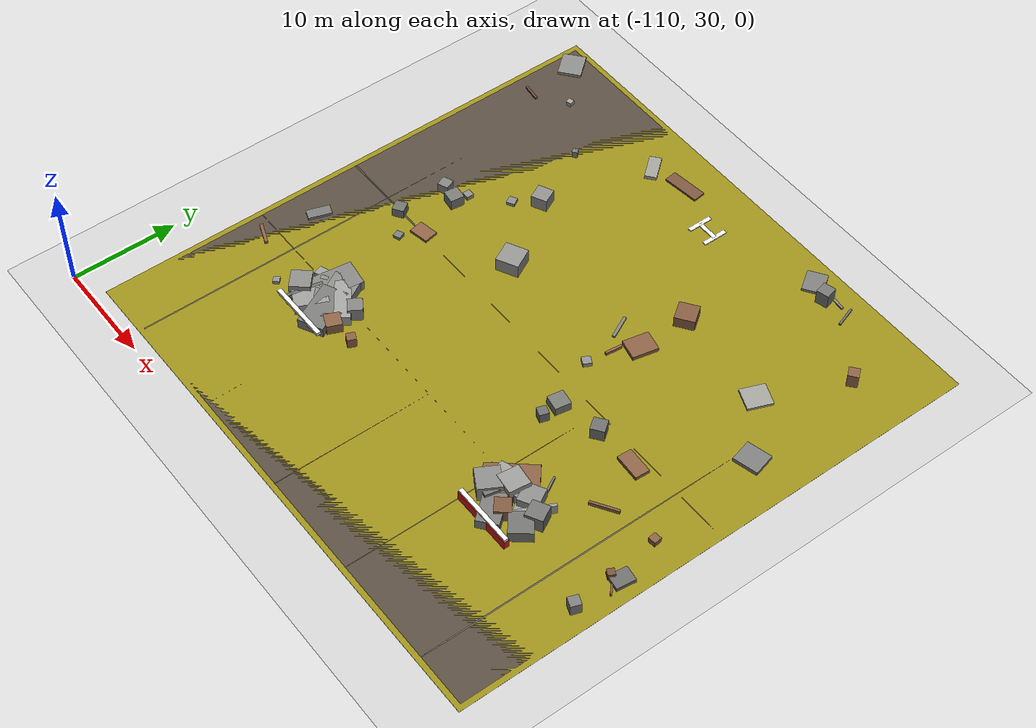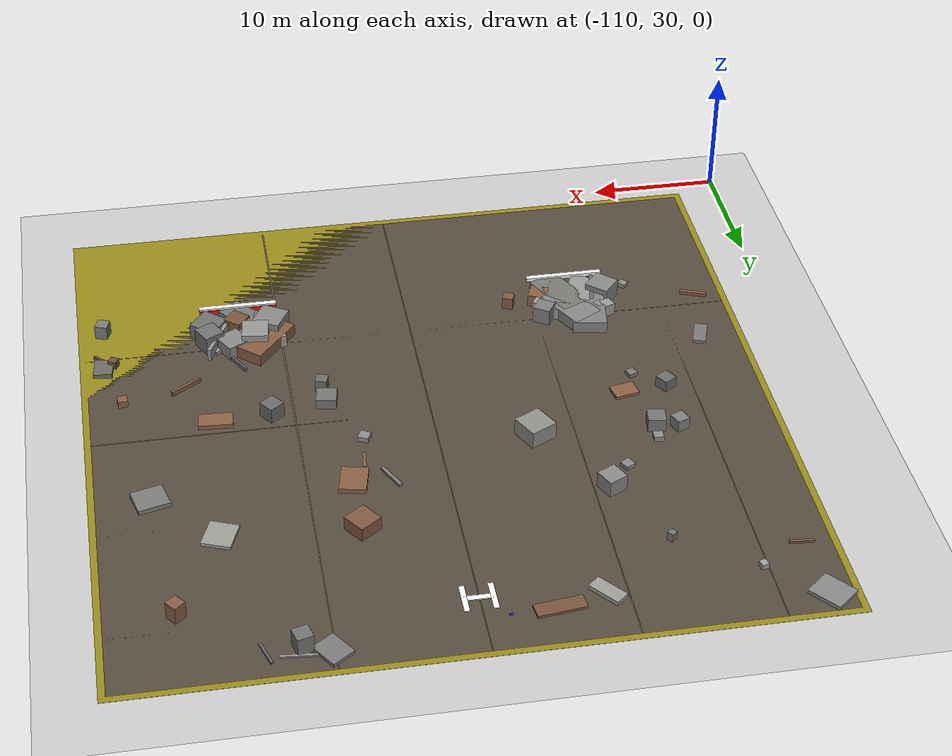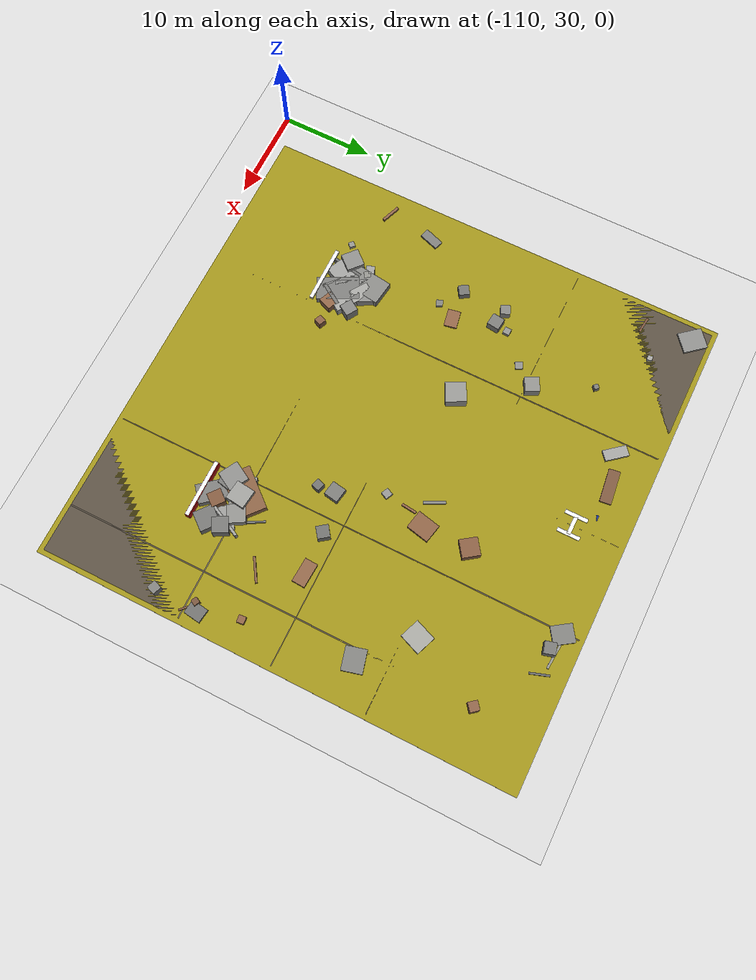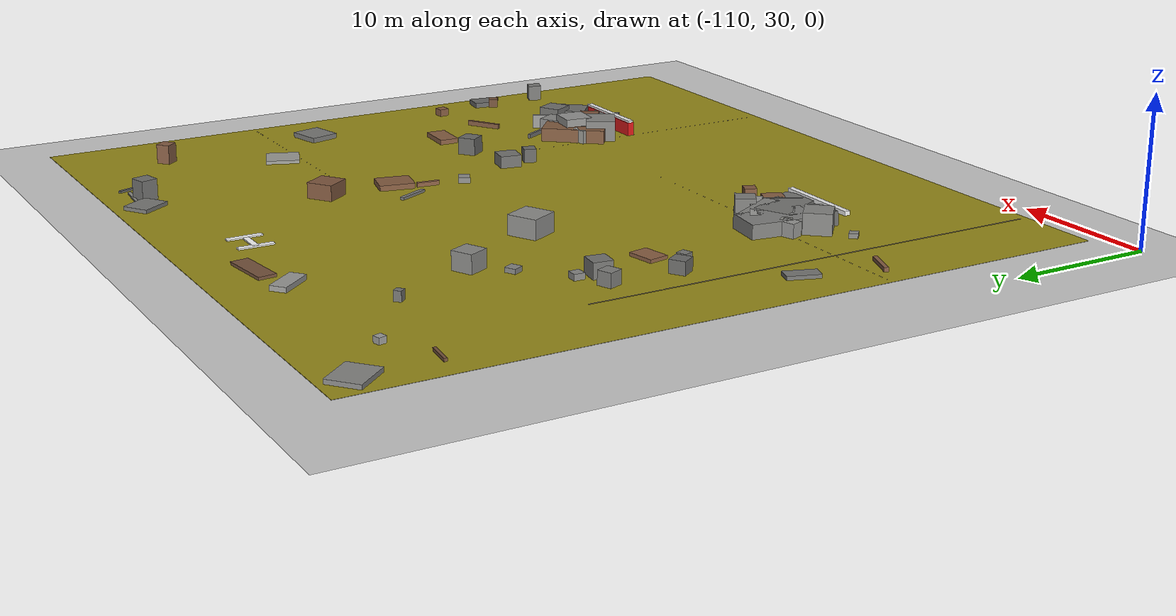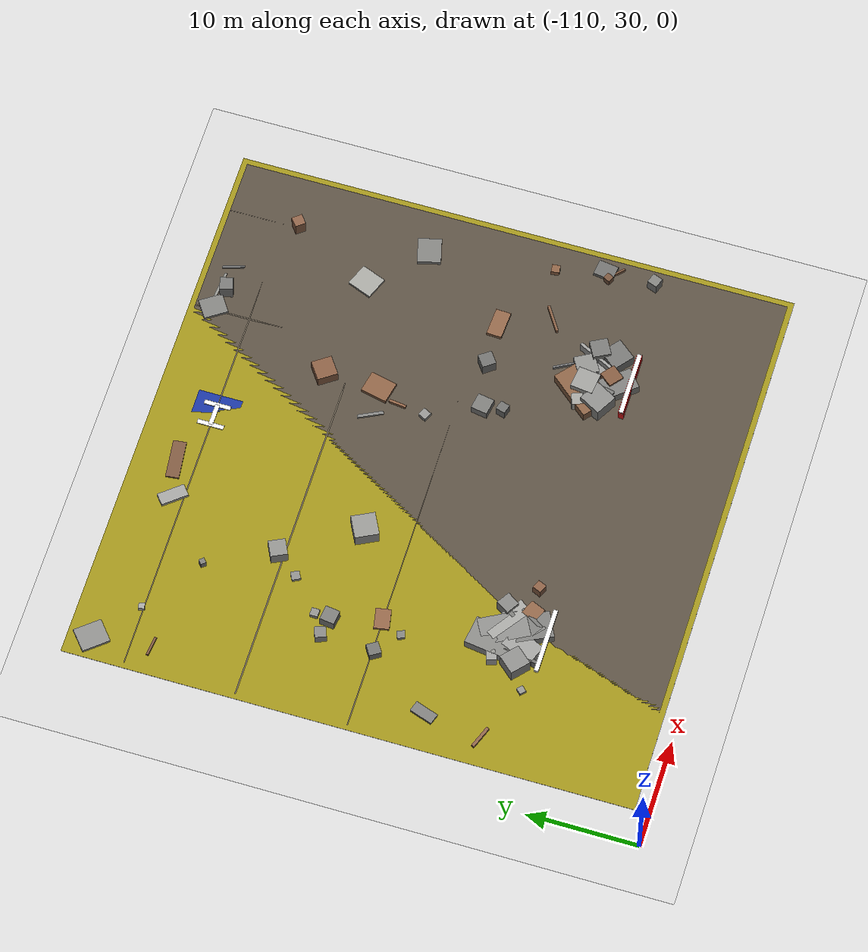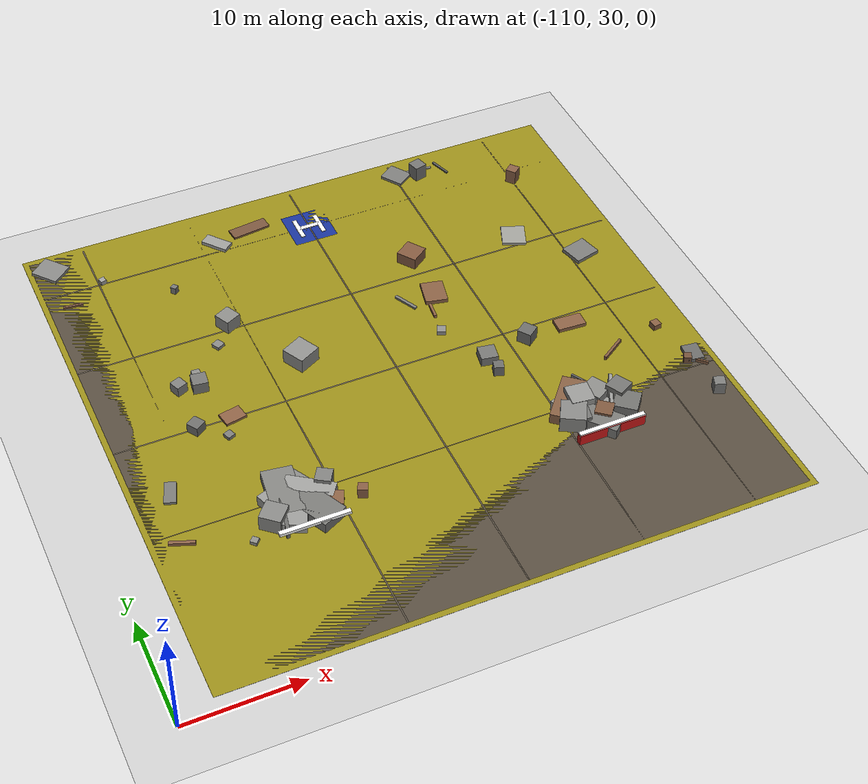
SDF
<sdf version="1.6">
 <world name="navitas_arena">
  <model name="ground_plane">
   <static>true</static>
   <link name="link">
    <collision name="collision">
     <geometry><plane><normal>0 0 1</normal><size>400 400</size></plane></geometry>
     <surface><friction><ode><mu>0.8</mu><mu2>0.8</mu2></ode></friction></surface>
    </collision>
    <visual name="visual">
     <cast_shadows>false</cast_shadows>
     <geometry><plane><normal>0 0 1</normal><size>400 400</size></plane></geometry>
     <material>
      <script><uri>file://media/materials/scripts/gazebo.material</uri><name>Gazebo/Grey</name></script>
     </material>
    </visual>
   </link>
  </model>
  <model name="gr_kolay">
   <static>true</static>
   <pose>-81.400 56.800 0.010 0 0 0.000</pose>
   <link name="link">
    <collision name="col"><geometry><box><size>51.000 51.000 0.020</size></box></geometry></collision>
    <visual name="vis">
     <geometry><box><size>51.000 51.000 0.020</size></box></geometry>
     <material><ambient>0.60 0.55 0.10 1</ambient><diffuse>0.60 0.55 0.10 1</diffuse></material>
    </visual>
   </link>
  </model>
  <model name="gd_kolay">
   <static>true</static>
   <pose>-81.400 56.800 0.010 0 0 0.000</pose>
   <link name="link">
    <collision name="col"><geometry><box><size>50.000 50.000 0.020</size></box></geometry></collision>
    <visual name="vis">
     <geometry><box><size>50.000 50.000 0.020</size></box></geometry>
     <material><ambient>0.34 0.30 0.25 1</ambient><diffuse>0.34 0.30 0.25 1</diffuse></material>
    </visual>
   </link>
  </model>
  <model name="gv_kolay_-2">
   <static>true</static>
   <pose>-101.400 56.800 0.010 0 0 0.000</pose>
   <link name="link">
    <collision name="col"><geometry><box><size>0.120 50.000 0.020</size></box></geometry></collision>
    <visual name="vis">
     <geometry><box><size>0.120 50.000 0.020</size></box></geometry>
     <material><ambient>0.42 0.38 0.32 1</ambient><diffuse>0.42 0.38 0.32 1</diffuse></material>
    </visual>
   </link>
  </model>
  <model name="gv_kolay_-1">
   <static>true</static>
   <pose>-91.400 56.800 0.010 0 0 0.000</pose>
   <link name="link">
    <collision name="col"><geometry><box><size>0.120 50.000 0.020</size></box></geometry></collision>
    <visual name="vis">
     <geometry><box><size>0.120 50.000 0.020</size></box></geometry>
     <material><ambient>0.42 0.38 0.32 1</ambient><diffuse>0.42 0.38 0.32 1</diffuse></material>
    </visual>
   </link>
  </model>
  <model name="gh_kolay_-1">
   <static>true</static>
   <pose>-81.400 46.800 0.010 0 0 0.000</pose>
   <link name="link">
    <collision name="col"><geometry><box><size>50.000 0.120 0.020</size></box></geometry></collision>
    <visual name="vis">
     <geometry><box><size>50.000 0.120 0.020</size></box></geometry>
     <material><ambient>0.42 0.38 0.32 1</ambient><diffuse>0.42 0.38 0.32 1</diffuse></material>
    </visual>
   </link>
  </model>
  <model name="gv_kolay_0">
   <static>true</static>
   <pose>-81.400 56.800 0.010 0 0 0.000</pose>
   <link name="link">
    <collision name="col"><geometry><box><size>0.120 50.000 0.020</size></box></geometry></collision>
    <visual name="vis">
     <geometry><box><size>0.120 50.000 0.020</size></box></geometry>
     <material><ambient>0.42 0.38 0.32 1</ambient><diffuse>0.42 0.38 0.32 1</diffuse></material>
    </visual>
   </link>
  </model>
  <model name="gh_kolay_0">
   <static>true</static>
   <pose>-81.400 56.800 0.010 0 0 0.000</pose>
   <link name="link">
    <collision name="col"><geometry><box><size>50.000 0.120 0.020</size></box></geometry></collision>
    <visual name="vis">
     <geometry><box><size>50.000 0.120 0.020</size></box></geometry>
     <material><ambient>0.42 0.38 0.32 1</ambient><diffuse>0.42 0.38 0.32 1</diffuse></material>
    </visual>
   </link>
  </model>
  <model name="gv_kolay_1">
   <static>true</static>
   <pose>-71.400 56.800 0.010 0 0 0.000</pose>
   <link name="link">
    <collision name="col"><geometry><box><size>0.120 50.000 0.020</size></box></geometry></collision>
    <visual name="vis">
     <geometry><box><size>0.120 50.000 0.020</size></box></geometry>
     <material><ambient>0.42 0.38 0.32 1</ambient><diffuse>0.42 0.38 0.32 1</diffuse></material>
    </visual>
   </link>
  </model>
  <model name="gh_kolay_1">
   <static>true</static>
   <pose>-81.400 66.800 0.010 0 0 0.000</pose>
   <link name="link">
    <collision name="col"><geometry><box><size>50.000 0.120 0.020</size></box></geometry></collision>
    <visual name="vis">
     <geometry><box><size>50.000 0.120 0.020</size></box></geometry>
     <material><ambient>0.42 0.38 0.32 1</ambient><diffuse>0.42 0.38 0.32 1</diffuse></material>
    </visual>
   </link>
  </model>
  <model name="gv_kolay_2">
   <static>true</static>
   <pose>-61.400 56.800 0.010 0 0 0.000</pose>
   <link name="link">
    <collision name="col"><geometry><box><size>0.120 50.000 0.020</size></box></geometry></collision>
    <visual name="vis">
     <geometry><box><size>0.120 50.000 0.020</size></box></geometry>
     <material><ambient>0.42 0.38 0.32 1</ambient><diffuse>0.42 0.38 0.32 1</diffuse></material>
    </visual>
   </link>
  </model>
  <model name="gh_kolay_2">
   <static>true</static>
   <pose>-81.400 76.800 0.010 0 0 0.000</pose>
   <link name="link">
    <collision name="col"><geometry><box><size>50.000 0.120 0.020</size></box></geometry></collision>
    <visual name="vis">
     <geometry><box><size>50.000 0.120 0.020</size></box></geometry>
     <material><ambient>0.42 0.38 0.32 1</ambient><diffuse>0.42 0.38 0.32 1</diffuse></material>
    </visual>
   </link>
  </model>
  <model name="bar_kolay_0b">
   <static>true</static>
   <pose>-94.400 42.800 1.000 0 0 0.000</pose>
   <link name="link">
    <collision name="col"><geometry><box><size>6.000 0.400 0.300</size></box></geometry></collision>
    <visual name="vis">
     <geometry><box><size>6.000 0.400 0.300</size></box></geometry>
     <material><ambient>0.95 0.95 0.95 1</ambient><diffuse>0.95 0.95 0.95 1</diffuse></material>
    </visual>
   </link>
  </model>
  <model name="blk_kolay_0_0_0">
   <static>true</static>
   <pose>-97.054 44.795 0.739 0 0 0.849</pose>
   <link name="link">
    <collision name="col"><geometry><box><size>1.883 1.883 1.478</size></box></geometry></collision>
    <visual name="vis">
     <geometry><box><size>1.883 1.883 1.478</size></box></geometry>
     <material><ambient>0.53 0.53 0.52 1</ambient><diffuse>0.53 0.53 0.52 1</diffuse></material>
    </visual>
   </link>
  </model>
  <model name="blk_kolay_0_0_1">
   <static>true</static>
   <pose>-96.267 44.581 0.500 0 0 1.383</pose>
   <link name="link">
    <collision name="col"><geometry><box><size>3.385 0.306 1.000</size></box></geometry></collision>
    <visual name="vis">
     <geometry><box><size>3.385 0.306 1.000</size></box></geometry>
     <material><ambient>0.42 0.42 0.41 1</ambient><diffuse>0.42 0.42 0.41 1</diffuse></material>
    </visual>
   </link>
  </model>
  <model name="blk_kolay_0_0_2">
   <static>true</static>
   <pose>-95.387 44.592 0.500 0 0 1.142</pose>
   <link name="link">
    <collision name="col"><geometry><box><size>3.016 2.078 1.000</size></box></geometry></collision>
    <visual name="vis">
     <geometry><box><size>3.016 2.078 1.000</size></box></geometry>
     <material><ambient>0.60 0.60 0.59 1</ambient><diffuse>0.60 0.60 0.59 1</diffuse></material>
    </visual>
   </link>
  </model>
  <model name="blk_kolay_0_0_3">
   <static>true</static>
   <pose>-94.416 44.444 0.500 0 0 2.418</pose>
   <link name="link">
    <collision name="col"><geometry><box><size>3.447 0.418 1.000</size></box></geometry></collision>
    <visual name="vis">
     <geometry><box><size>3.447 0.418 1.000</size></box></geometry>
     <material><ambient>0.52 0.52 0.51 1</ambient><diffuse>0.52 0.52 0.51 1</diffuse></material>
    </visual>
   </link>
  </model>
  <model name="blk_kolay_0_0_4">
   <static>true</static>
   <pose>-93.661 44.766 0.500 0 0 2.030</pose>
   <link name="link">
    <collision name="col"><geometry><box><size>4.451 2.454 1.000</size></box></geometry></collision>
    <visual name="vis">
     <geometry><box><size>4.451 2.454 1.000</size></box></geometry>
     <material><ambient>0.47 0.47 0.46 1</ambient><diffuse>0.47 0.47 0.46 1</diffuse></material>
    </visual>
   </link>
  </model>
  <model name="blk_kolay_0_0_5">
   <static>true</static>
   <pose>-92.754 44.410 0.500 0 0 0.998</pose>
   <link name="link">
    <collision name="col"><geometry><box><size>2.681 0.370 1.000</size></box></geometry></collision>
    <visual name="vis">
     <geometry><box><size>2.681 0.370 1.000</size></box></geometry>
     <material><ambient>0.45 0.45 0.44 1</ambient><diffuse>0.45 0.45 0.44 1</diffuse></material>
    </visual>
   </link>
  </model>
  <model name="blk_kolay_0_0_6">
   <static>true</static>
   <pose>-91.997 44.624 0.500 0 0 1.170</pose>
   <link name="link">
    <collision name="col"><geometry><box><size>1.427 1.427 1.000</size></box></geometry></collision>
    <visual name="vis">
     <geometry><box><size>1.427 1.427 1.000</size></box></geometry>
     <material><ambient>0.54 0.38 0.27 1</ambient><diffuse>0.54 0.38 0.27 1</diffuse></material>
    </visual>
   </link>
  </model>
  <model name="blk_kolay_0_1_0">
   <static>true</static>
   <pose>-97.035 46.865 0.500 0 0 0.334</pose>
   <link name="link">
    <collision name="col"><geometry><box><size>0.883 0.883 1.000</size></box></geometry></collision>
    <visual name="vis">
     <geometry><box><size>0.883 0.883 1.000</size></box></geometry>
     <material><ambient>0.60 0.60 0.59 1</ambient><diffuse>0.60 0.60 0.59 1</diffuse></material>
    </visual>
   </link>
  </model>
  <model name="blk_kolay_0_1_1">
   <static>true</static>
   <pose>-96.397 46.823 0.500 0 0 2.184</pose>
   <link name="link">
    <collision name="col"><geometry><box><size>0.692 0.692 1.000</size></box></geometry></collision>
    <visual name="vis">
     <geometry><box><size>0.692 0.692 1.000</size></box></geometry>
     <material><ambient>0.55 0.55 0.53 1</ambient><diffuse>0.55 0.55 0.53 1</diffuse></material>
    </visual>
   </link>
  </model>
  <model name="blk_kolay_0_1_2">
   <static>true</static>
   <pose>-95.480 46.927 0.500 0 0 1.435</pose>
   <link name="link">
    <collision name="col"><geometry><box><size>4.741 2.613 1.000</size></box></geometry></collision>
    <visual name="vis">
     <geometry><box><size>4.741 2.613 1.000</size></box></geometry>
     <material><ambient>0.51 0.51 0.50 1</ambient><diffuse>0.51 0.51 0.50 1</diffuse></material>
    </visual>
   </link>
  </model>
  <model name="blk_kolay_0_1_3">
   <static>true</static>
   <pose>-94.180 46.609 0.500 0 0 2.072</pose>
   <link name="link">
    <collision name="col"><geometry><box><size>4.235 2.531 1.000</size></box></geometry></collision>
    <visual name="vis">
     <geometry><box><size>4.235 2.531 1.000</size></box></geometry>
     <material><ambient>0.53 0.53 0.52 1</ambient><diffuse>0.53 0.53 0.52 1</diffuse></material>
    </visual>
   </link>
  </model>
  <model name="blk_kolay_0_1_4">
   <static>true</static>
   <pose>-93.383 46.558 0.500 0 0 2.525</pose>
   <link name="link">
    <collision name="col"><geometry><box><size>4.191 1.459 1.000</size></box></geometry></collision>
    <visual name="vis">
     <geometry><box><size>4.191 1.459 1.000</size></box></geometry>
     <material><ambient>0.62 0.62 0.61 1</ambient><diffuse>0.62 0.62 0.61 1</diffuse></material>
    </visual>
   </link>
  </model>
  <model name="blk_kolay_0_1_5">
   <static>true</static>
   <pose>-92.842 46.450 0.500 0 0 0.870</pose>
   <link name="link">
    <collision name="col"><geometry><box><size>0.651 0.651 1.000</size></box></geometry></collision>
    <visual name="vis">
     <geometry><box><size>0.651 0.651 1.000</size></box></geometry>
     <material><ambient>0.46 0.46 0.45 1</ambient><diffuse>0.46 0.46 0.45 1</diffuse></material>
    </visual>
   </link>
  </model>
  <model name="blk_kolay_0_1_6">
   <static>true</static>
   <pose>-92.014 46.894 0.668 0 0 2.581</pose>
   <link name="link">
    <collision name="col"><geometry><box><size>1.340 1.340 1.337</size></box></geometry></collision>
    <visual name="vis">
     <geometry><box><size>1.340 1.340 1.337</size></box></geometry>
     <material><ambient>0.50 0.50 0.49 1</ambient><diffuse>0.50 0.50 0.49 1</diffuse></material>
    </visual>
   </link>
  </model>
  <model name="bar_kolay_2">
   <static>true</static>
   <pose>-68.400 42.800 0.500 0 0 0.000</pose>
   <link name="link">
    <collision name="col"><geometry><box><size>6.000 0.500 1.000</size></box></geometry></collision>
    <visual name="vis">
     <geometry><box><size>6.000 0.500 1.000</size></box></geometry>
     <material><ambient>0.85 0.10 0.10 1</ambient><diffuse>0.85 0.10 0.10 1</diffuse></material>
    </visual>
   </link>
  </model>
  <model name="bar_kolay_2b">
   <static>true</static>
   <pose>-68.400 42.800 1.000 0 0 0.000</pose>
   <link name="link">
    <collision name="col"><geometry><box><size>6.000 0.400 0.300</size></box></geometry></collision>
    <visual name="vis">
     <geometry><box><size>6.000 0.400 0.300</size></box></geometry>
     <material><ambient>0.95 0.95 0.95 1</ambient><diffuse>0.95 0.95 0.95 1</diffuse></material>
    </visual>
   </link>
  </model>
  <model name="blk_kolay_2_0_0">
   <static>true</static>
   <pose>-70.767 45.072 0.770 0 0 1.059</pose>
   <link name="link">
    <collision name="col"><geometry><box><size>2.152 2.152 1.540</size></box></geometry></collision>
    <visual name="vis">
     <geometry><box><size>2.152 2.152 1.540</size></box></geometry>
     <material><ambient>0.53 0.53 0.52 1</ambient><diffuse>0.53 0.53 0.52 1</diffuse></material>
    </visual>
   </link>
  </model>
  <model name="blk_kolay_2_0_1">
   <static>true</static>
   <pose>-70.160 44.675 0.646 0 0 2.922</pose>
   <link name="link">
    <collision name="col"><geometry><box><size>1.332 1.332 1.292</size></box></geometry></collision>
    <visual name="vis">
     <geometry><box><size>1.332 1.332 1.292</size></box></geometry>
     <material><ambient>0.45 0.45 0.44 1</ambient><diffuse>0.45 0.45 0.44 1</diffuse></material>
    </visual>
   </link>
  </model>
  <model name="blk_kolay_2_0_2">
   <static>true</static>
   <pose>-69.182 44.477 0.500 0 0 2.260</pose>
   <link name="link">
    <collision name="col"><geometry><box><size>4.852 1.996 1.000</size></box></geometry></collision>
    <visual name="vis">
     <geometry><box><size>4.852 1.996 1.000</size></box></geometry>
     <material><ambient>0.47 0.47 0.46 1</ambient><diffuse>0.47 0.47 0.46 1</diffuse></material>
    </visual>
   </link>
  </model>
  <model name="blk_kolay_2_0_3">
   <static>true</static>
   <pose>-68.164 44.538 0.613 0 0 2.458</pose>
   <link name="link">
    <collision name="col"><geometry><box><size>1.448 1.448 1.226</size></box></geometry></collision>
    <visual name="vis">
     <geometry><box><size>1.448 1.448 1.226</size></box></geometry>
     <material><ambient>0.49 0.34 0.24 1</ambient><diffuse>0.49 0.34 0.24 1</diffuse></material>
    </visual>
   </link>
  </model>
  <model name="blk_kolay_2_0_4">
   <static>true</static>
   <pose>-67.743 44.645 0.500 0 0 2.201</pose>
   <link name="link">
    <collision name="col"><geometry><box><size>0.611 0.611 1.000</size></box></geometry></collision>
    <visual name="vis">
     <geometry><box><size>0.611 0.611 1.000</size></box></geometry>
     <material><ambient>0.54 0.37 0.27 1</ambient><diffuse>0.54 0.37 0.27 1</diffuse></material>
    </visual>
   </link>
  </model>
  <model name="blk_kolay_2_0_5">
   <static>true</static>
   <pose>-66.387 44.774 0.500 0 0 1.240</pose>
   <link name="link">
    <collision name="col"><geometry><box><size>0.718 0.718 1.000</size></box></geometry></collision>
    <visual name="vis">
     <geometry><box><size>0.718 0.718 1.000</size></box></geometry>
     <material><ambient>0.45 0.32 0.23 1</ambient><diffuse>0.45 0.32 0.23 1</diffuse></material>
    </visual>
   </link>
  </model>
  <model name="blk_kolay_2_0_6">
   <static>true</static>
   <pose>-65.983 44.681 0.592 0 0 0.886</pose>
   <link name="link">
    <collision name="col"><geometry><box><size>2.100 2.100 1.185</size></box></geometry></collision>
    <visual name="vis">
     <geometry><box><size>2.100 2.100 1.185</size></box></geometry>
     <material><ambient>0.44 0.44 0.43 1</ambient><diffuse>0.44 0.44 0.43 1</diffuse></material>
    </visual>
   </link>
  </model>
  <model name="blk_kolay_2_1_0">
   <static>true</static>
   <pose>-71.097 46.806 0.500 0 0 1.899</pose>
   <link name="link">
    <collision name="col"><geometry><box><size>1.068 1.068 1.000</size></box></geometry></collision>
    <visual name="vis">
     <geometry><box><size>1.068 1.068 1.000</size></box></geometry>
     <material><ambient>0.61 0.61 0.59 1</ambient><diffuse>0.61 0.61 0.59 1</diffuse></material>
    </visual>
   </link>
  </model>
  <model name="blk_kolay_2_1_1">
   <static>true</static>
   <pose>-69.917 46.673 0.500 0 0 0.866</pose>
   <link name="link">
    <collision name="col"><geometry><box><size>4.645 2.918 1.000</size></box></geometry></collision>
    <visual name="vis">
     <geometry><box><size>4.645 2.918 1.000</size></box></geometry>
     <material><ambient>0.52 0.37 0.26 1</ambient><diffuse>0.52 0.37 0.26 1</diffuse></material>
    </visual>
   </link>
  </model>
  <model name="blk_kolay_2_1_2">
   <static>true</static>
   <pose>-69.430 46.572 0.790 0 0 3.023</pose>
   <link name="link">
    <collision name="col"><geometry><box><size>2.017 2.017 1.579</size></box></geometry></collision>
    <visual name="vis">
     <geometry><box><size>2.017 2.017 1.579</size></box></geometry>
     <material><ambient>0.59 0.59 0.58 1</ambient><diffuse>0.59 0.59 0.58 1</diffuse></material>
    </visual>
   </link>
  </model>
  <model name="blk_kolay_2_1_3">
   <static>true</static>
   <pose>-68.612 46.264 0.500 0 0 0.207</pose>
   <link name="link">
    <collision name="col"><geometry><box><size>0.926 0.926 1.000</size></box></geometry></collision>
    <visual name="vis">
     <geometry><box><size>0.926 0.926 1.000</size></box></geometry>
     <material><ambient>0.54 0.54 0.53 1</ambient><diffuse>0.54 0.54 0.53 1</diffuse></material>
    </visual>
   </link>
  </model>
  <model name="blk_kolay_2_1_4">
   <static>true</static>
   <pose>-67.659 46.999 0.549 0 0 0.522</pose>
   <link name="link">
    <collision name="col"><geometry><box><size>1.881 1.881 1.097</size></box></geometry></collision>
    <visual name="vis">
     <geometry><box><size>1.881 1.881 1.097</size></box></geometry>
     <material><ambient>0.54 0.54 0.53 1</ambient><diffuse>0.54 0.54 0.53 1</diffuse></material>
    </visual>
   </link>
  </model>
  <model name="blk_kolay_2_1_5">
   <static>true</static>
   <pose>-66.630 46.229 0.500 0 0 1.113</pose>
   <link name="link">
    <collision name="col"><geometry><box><size>4.037 0.280 1.000</size></box></geometry></collision>
    <visual name="vis">
     <geometry><box><size>4.037 0.280 1.000</size></box></geometry>
     <material><ambient>0.60 0.60 0.59 1</ambient><diffuse>0.60 0.60 0.59 1</diffuse></material>
    </visual>
   </link>
  </model>
  <model name="blk_kolay_2_1_6">
   <static>true</static>
   <pose>-65.931 46.253 0.749 0 0 0.501</pose>
   <link name="link">
    <collision name="col"><geometry><box><size>1.617 1.617 1.497</size></box></geometry></collision>
    <visual name="vis">
     <geometry><box><size>1.617 1.617 1.497</size></box></geometry>
     <material><ambient>0.45 0.45 0.44 1</ambient><diffuse>0.45 0.45 0.44 1</diffuse></material>
    </visual>
   </link>
  </model>
  <model name="chic_kolay_3">
   <static>true</static>
   <pose>-89.568 44.800 0.500 0 0 2.724</pose>
   <link name="link">
    <collision name="col"><geometry><box><size>0.823 0.823 1.000</size></box></geometry></collision>
    <visual name="vis">
     <geometry><box><size>0.823 0.823 1.000</size></box></geometry>
     <material><ambient>0.52 0.36 0.26 1</ambient><diffuse>0.52 0.36 0.26 1</diffuse></material>
    </visual>
   </link>
  </model>
  <model name="chic_kolay_4">
   <static>true</static>
   <pose>-73.791 52.800 0.500 0 0 2.846</pose>
   <link name="link">
    <collision name="col"><geometry><box><size>0.880 0.880 1.000</size></box></geometry></collision>
    <visual name="vis">
     <geometry><box><size>0.880 0.880 1.000</size></box></geometry>
     <material><ambient>0.42 0.42 0.41 1</ambient><diffuse>0.42 0.42 0.41 1</diffuse></material>
    </visual>
   </link>
  </model>
  <model name="chic_kolay_5">
   <static>true</static>
   <pose>-88.486 60.800 0.689 0 0 2.048</pose>
   <link name="link">
    <collision name="col"><geometry><box><size>2.145 2.145 1.377</size></box></geometry></collision>
    <visual name="vis">
     <geometry><box><size>2.145 2.145 1.377</size></box></geometry>
     <material><ambient>0.56 0.56 0.55 1</ambient><diffuse>0.56 0.56 0.55 1</diffuse></material>
    </visual>
   </link>
  </model>
  <model name="chic_kolay_6">
   <static>true</static>
   <pose>-74.685 68.800 0.557 0 0 2.190</pose>
   <link name="link">
    <collision name="col"><geometry><box><size>1.858 1.858 1.113</size></box></geometry></collision>
    <visual name="vis">
     <geometry><box><size>1.858 1.858 1.113</size></box></geometry>
     <material><ambient>0.51 0.35 0.25 1</ambient><diffuse>0.51 0.35 0.25 1</diffuse></material>
    </visual>
   </link>
  </model>
  <model name="deb_kolay_0">
   <static>true</static>
   <pose>-99.127 43.588 0.177 0 0 2.368</pose>
   <link name="link">
    <collision name="col"><geometry><box><size>0.594 0.594 0.353</size></box></geometry></collision>
    <visual name="vis">
     <geometry><box><size>0.594 0.594 0.353</size></box></geometry>
     <material><ambient>0.55 0.55 0.53 1</ambient><diffuse>0.55 0.55 0.53 1</diffuse></material>
    </visual>
   </link>
  </model>
  <model name="deb_kolay_3">
   <static>true</static>
   <pose>-67.884 48.969 0.161 0 0 2.079</pose>
   <link name="link">
    <collision name="col"><geometry><box><size>2.001 0.177 0.322</size></box></geometry></collision>
    <visual name="vis">
     <geometry><box><size>2.001 0.177 0.322</size></box></geometry>
     <material><ambient>0.44 0.44 0.44 1</ambient><diffuse>0.44 0.44 0.44 1</diffuse></material>
    </visual>
   </link>
  </model>
  <model name="deb_kolay_4">
   <static>true</static>
   <pose>-74.725 63.818 0.199 0 0 1.358</pose>
   <link name="link">
    <collision name="col"><geometry><box><size>2.447 1.984 0.399</size></box></geometry></collision>
    <visual name="vis">
     <geometry><box><size>2.447 1.984 0.399</size></box></geometry>
     <material><ambient>0.53 0.37 0.26 1</ambient><diffuse>0.53 0.37 0.26 1</diffuse></material>
    </visual>
   </link>
  </model>
  <model name="deb_kolay_5">
   <static>true</static>
   <pose>-57.704 48.077 0.198 0 0 1.437</pose>
   <link name="link">
    <collision name="col"><geometry><box><size>1.800 1.439 0.397</size></box></geometry></collision>
    <visual name="vis">
     <geometry><box><size>1.800 1.439 0.397</size></box></geometry>
     <material><ambient>0.42 0.42 0.41 1</ambient><diffuse>0.42 0.42 0.41 1</diffuse></material>
    </visual>
   </link>
  </model>
  <model name="deb_kolay_6">
   <static>true</static>
   <pose>-95.555 73.252 0.348 0 0 0.706</pose>
   <link name="link">
    <collision name="col"><geometry><box><size>0.507 0.507 0.695</size></box></geometry></collision>
    <visual name="vis">
     <geometry><box><size>0.507 0.507 0.695</size></box></geometry>
     <material><ambient>0.46 0.46 0.45 1</ambient><diffuse>0.46 0.46 0.45 1</diffuse></material>
    </visual>
   </link>
  </model>
  <model name="deb_kolay_7">
   <static>true</static>
   <pose>-99.157 61.489 0.485 0 0 1.950</pose>
   <link name="link">
    <collision name="col"><geometry><box><size>1.021 1.021 0.970</size></box></geometry></collision>
    <visual name="vis">
     <geometry><box><size>1.021 1.021 0.970</size></box></geometry>
     <material><ambient>0.50 0.50 0.49 1</ambient><diffuse>0.50 0.50 0.49 1</diffuse></material>
    </visual>
   </link>
  </model>
  <model name="deb_kolay_9">
   <static>true</static>
   <pose>-65.577 55.617 0.186 0 0 3.085</pose>
   <link name="link">
    <collision name="col"><geometry><box><size>2.548 1.374 0.372</size></box></geometry></collision>
    <visual name="vis">
     <geometry><box><size>2.548 1.374 0.372</size></box></geometry>
     <material><ambient>0.54 0.38 0.27 1</ambient><diffuse>0.54 0.38 0.27 1</diffuse></material>
    </visual>
   </link>
  </model>
  <model name="deb_kolay_10">
   <static>true</static>
   <pose>-97.448 61.168 0.547 0 0 3.013</pose>
   <link name="link">
    <collision name="col"><geometry><box><size>1.330 1.330 1.095</size></box></geometry></collision>
    <visual name="vis">
     <geometry><box><size>1.330 1.330 1.095</size></box></geometry>
     <material><ambient>0.46 0.46 0.45 1</ambient><diffuse>0.46 0.46 0.45 1</diffuse></material>
    </visual>
   </link>
  </model>
  <model name="deb_kolay_11">
   <static>true</static>
   <pose>-104.327 45.654 0.153 0 0 2.780</pose>
   <link name="link">
    <collision name="col"><geometry><box><size>2.136 0.287 0.307</size></box></geometry></collision>
    <visual name="vis">
     <geometry><box><size>2.136 0.287 0.307</size></box></geometry>
     <material><ambient>0.53 0.37 0.27 1</ambient><diffuse>0.53 0.37 0.27 1</diffuse></material>
    </visual>
   </link>
  </model>
  <model name="deb_kolay_12">
   <static>true</static>
   <pose>-92.697 67.331 0.644 0 0 0.457</pose>
   <link name="link">
    <collision name="col"><geometry><box><size>1.516 1.516 1.289</size></box></geometry></collision>
    <visual name="vis">
     <geometry><box><size>1.516 1.516 1.289</size></box></geometry>
     <material><ambient>0.54 0.54 0.53 1</ambient><diffuse>0.54 0.54 0.53 1</diffuse></material>
    </visual>
   </link>
  </model>
  <model name="deb_kolay_13">
   <static>true</static>
   <pose>-96.096 56.871 0.130 0 0 0.185</pose>
   <link name="link">
    <collision name="col"><geometry><box><size>1.898 1.366 0.259</size></box></geometry></collision>
    <visual name="vis">
     <geometry><box><size>1.898 1.366 0.259</size></box></geometry>
     <material><ambient>0.55 0.38 0.27 1</ambient><diffuse>0.55 0.38 0.27 1</diffuse></material>
    </visual>
   </link>
  </model>
  <model name="deb_kolay_14">
   <static>true</static>
   <pose>-104.853 80.174 0.155 0 0 2.267</pose>
   <link name="link">
    <collision name="col"><geometry><box><size>2.560 2.199 0.311</size></box></geometry></collision>
    <visual name="vis">
     <geometry><box><size>2.560 2.199 0.311</size></box></geometry>
     <material><ambient>0.53 0.53 0.52 1</ambient><diffuse>0.53 0.53 0.52 1</diffuse></material>
    </visual>
   </link>
  </model>
  <model name="deb_kolay_16">
   <static>true</static>
   <pose>-73.932 54.596 0.437 0 0 2.972</pose>
   <link name="link">
    <collision name="col"><geometry><box><size>1.515 1.515 0.875</size></box></geometry></collision>
    <visual name="vis">
     <geometry><box><size>1.515 1.515 0.875</size></box></geometry>
     <material><ambient>0.46 0.46 0.45 1</ambient><diffuse>0.46 0.46 0.45 1</diffuse></material>
    </visual>
   </link>
  </model>
  <model name="deb_kolay_17">
   <static>true</static>
   <pose>-64.872 68.004 0.133 0 0 1.199</pose>
   <link name="link">
    <collision name="col"><geometry><box><size>2.339 2.152 0.266</size></box></geometry></collision>
    <visual name="vis">
     <geometry><box><size>2.339 2.152 0.266</size></box></geometry>
     <material><ambient>0.62 0.62 0.60 1</ambient><diffuse>0.62 0.62 0.60 1</diffuse></material>
    </visual>
   </link>
  </model>
  <model name="deb_kolay_18">
   <static>true</static>
   <pose>-104.294 74.991 0.108 0 0 3.027</pose>
   <link name="link">
    <collision name="col"><geometry><box><size>1.758 0.218 0.215</size></box></geometry></collision>
    <visual name="vis">
     <geometry><box><size>1.758 0.218 0.215</size></box></geometry>
     <material><ambient>0.46 0.32 0.23 1</ambient><diffuse>0.46 0.32 0.23 1</diffuse></material>
    </visual>
   </link>
  </model>
  <model name="deb_kolay_19">
   <static>true</static>
   <pose>-97.092 54.917 0.167 0 0 1.943</pose>
   <link name="link">
    <collision name="col"><geometry><box><size>0.701 0.701 0.333</size></box></geometry></collision>
    <visual name="vis">
     <geometry><box><size>0.701 0.701 0.333</size></box></geometry>
     <material><ambient>0.48 0.48 0.47 1</ambient><diffuse>0.48 0.48 0.47 1</diffuse></material>
    </visual>
   </link>
  </model>
  <model name="deb_kolay_21">
   <static>true</static>
   <pose>-97.273 62.587 0.219 0 0 3.113</pose>
   <link name="link">
    <collision name="col"><geometry><box><size>0.723 0.723 0.438</size></box></geometry></collision>
    <visual name="vis">
     <geometry><box><size>0.723 0.723 0.438</size></box></geometry>
     <material><ambient>0.54 0.54 0.53 1</ambient><diffuse>0.54 0.54 0.53 1</diffuse></material>
    </visual>
   </link>
  </model>
  <model name="deb_kolay_22">
   <static>true</static>
   <pose>-66.833 79.704 0.085 0 0 1.895</pose>
   <link name="link">
    <collision name="col"><geometry><box><size>2.009 0.199 0.171</size></box></geometry></collision>
    <visual name="vis">
     <geometry><box><size>2.009 0.199 0.171</size></box></geometry>
     <material><ambient>0.40 0.40 0.40 1</ambient><diffuse>0.40 0.40 0.40 1</diffuse></material>
    </visual>
   </link>
  </model>
  <model name="deb_kolay_23">
   <static>true</static>
   <pose>-61.334 75.395 0.693 0 0 0.682</pose>
   <link name="link">
    <collision name="col"><geometry><box><size>0.971 0.971 1.387</size></box></geometry></collision>
    <visual name="vis">
     <geometry><box><size>0.971 0.971 1.387</size></box></geometry>
     <material><ambient>0.53 0.37 0.27 1</ambient><diffuse>0.53 0.37 0.27 1</diffuse></material>
    </visual>
   </link>
  </model>
  <model name="deb_kolay_24">
   <static>true</static>
   <pose>-71.195 80.177 0.142 0 0 2.166</pose>
   <link name="link">
    <collision name="col"><geometry><box><size>2.199 1.873 0.284</size></box></geometry></collision>
    <visual name="vis">
     <geometry><box><size>2.199 1.873 0.284</size></box></geometry>
     <material><ambient>0.48 0.48 0.47 1</ambient><diffuse>0.48 0.48 0.47 1</diffuse></material>
    </visual>
   </link>
  </model>
  <model name="deb_kolay_26">
   <static>true</static>
   <pose>-101.019 76.954 0.221 0 0 1.806</pose>
   <link name="link">
    <collision name="col"><geometry><box><size>0.532 0.532 0.443</size></box></geometry></collision>
    <visual name="vis">
     <geometry><box><size>0.532 0.532 0.443</size></box></geometry>
     <material><ambient>0.62 0.62 0.61 1</ambient><diffuse>0.62 0.62 0.61 1</diffuse></material>
    </visual>
   </link>
  </model>
  <model name="deb_kolay_27">
   <static>true</static>
   <pose>-91.901 44.494 0.232 0 0 3.008</pose>
   <link name="link">
    <collision name="col"><geometry><box><size>0.658 0.658 0.465</size></box></geometry></collision>
    <visual name="vis">
     <geometry><box><size>0.658 0.658 0.465</size></box></geometry>
     <material><ambient>0.52 0.37 0.26 1</ambient><diffuse>0.52 0.37 0.26 1</diffuse></material>
    </visual>
   </link>
  </model>
  <model name="deb_kolay_30">
   <static>true</static>
   <pose>-75.768 61.787 0.158 0 0 1.454</pose>
   <link name="link">
    <collision name="col"><geometry><box><size>1.588 0.237 0.316</size></box></geometry></collision>
    <visual name="vis">
     <geometry><box><size>1.588 0.237 0.316</size></box></geometry>
     <material><ambient>0.55 0.38 0.27 1</ambient><diffuse>0.55 0.38 0.27 1</diffuse></material>
    </visual>
   </link>
  </model>
  <model name="deb_kolay_31">
   <static>true</static>
   <pose>-57.858 43.562 0.574 0 0 2.790</pose>
   <link name="link">
    <collision name="col"><geometry><box><size>0.959 0.959 1.149</size></box></geometry></collision>
    <visual name="vis">
     <geometry><box><size>0.959 0.959 1.149</size></box></geometry>
     <material><ambient>0.48 0.48 0.47 1</ambient><diffuse>0.48 0.48 0.47 1</diffuse></material>
    </visual>
   </link>
  </model>
  <model name="deb_kolay_32">
   <static>true</static>
   <pose>-103.527 50.902 0.137 0 0 1.242</pose>
   <link name="link">
    <collision name="col"><geometry><box><size>2.184 1.006 0.274</size></box></geometry></collision>
    <visual name="vis">
     <geometry><box><size>2.184 1.006 0.274</size></box></geometry>
     <material><ambient>0.47 0.47 0.46 1</ambient><diffuse>0.47 0.47 0.46 1</diffuse></material>
    </visual>
   </link>
  </model>
  <model name="deb_kolay_33">
   <static>true</static>
   <pose>-63.721 51.196 0.186 0 0 0.571</pose>
   <link name="link">
    <collision name="col"><geometry><box><size>2.620 0.228 0.371</size></box></geometry></collision>
    <visual name="vis">
     <geometry><box><size>2.620 0.228 0.371</size></box></geometry>
     <material><ambient>0.50 0.35 0.25 1</ambient><diffuse>0.50 0.35 0.25 1</diffuse></material>
    </visual>
   </link>
  </model>
  <model name="deb_kolay_34">
   <static>true</static>
   <pose>-57.718 47.131 0.168 0 0 2.374</pose>
   <link name="link">
    <collision name="col"><geometry><box><size>1.809 0.167 0.335</size></box></geometry></collision>
    <visual name="vis">
     <geometry><box><size>1.809 0.167 0.335</size></box></geometry>
     <material><ambient>0.48 0.34 0.24 1</ambient><diffuse>0.48 0.34 0.24 1</diffuse></material>
    </visual>
   </link>
  </model>
  <model name="deb_kolay_35">
   <static>true</static>
   <pose>-69.771 55.443 0.622 0 0 2.204</pose>
   <link name="link">
    <collision name="col"><geometry><box><size>1.274 1.274 1.244</size></box></geometry></collision>
    <visual name="vis">
     <geometry><box><size>1.274 1.274 1.244</size></box></geometry>
     <material><ambient>0.42 0.42 0.41 1</ambient><diffuse>0.42 0.42 0.41 1</diffuse></material>
    </visual>
   </link>
  </model>
  <model name="deb_kolay_37">
   <static>true</static>
   <pose>-86.589 78.584 0.110 0 0 0.120</pose>
   <link name="link">
    <collision name="col"><geometry><box><size>3.544 1.193 0.219</size></box></geometry></collision>
    <visual name="vis">
     <geometry><box><size>3.544 1.193 0.219</size></box></geometry>
     <material><ambient>0.47 0.33 0.24 1</ambient><diffuse>0.47 0.33 0.24 1</diffuse></material>
    </visual>
   </link>
  </model>
  <model name="deb_kolay_38">
   <static>true</static>
   <pose>-58.924 52.349 0.272 0 0 0.102</pose>
   <link name="link">
    <collision name="col"><geometry><box><size>0.744 0.744 0.543</size></box></geometry></collision>
    <visual name="vis">
     <geometry><box><size>0.744 0.744 0.543</size></box></geometry>
     <material><ambient>0.53 0.37 0.26 1</ambient><diffuse>0.53 0.37 0.26 1</diffuse></material>
    </visual>
   </link>
  </model>
  <model name="deb_kolay_39">
   <static>true</static>
   <pose>-94.361 65.230 0.171 0 0 0.495</pose>
   <link name="link">
    <collision name="col"><geometry><box><size>0.785 0.785 0.341</size></box></geometry></collision>
    <visual name="vis">
     <geometry><box><size>0.785 0.785 0.341</size></box></geometry>
     <material><ambient>0.53 0.53 0.52 1</ambient><diffuse>0.53 0.53 0.52 1</diffuse></material>
    </visual>
   </link>
  </model>
  <model name="deb_kolay_40">
   <static>true</static>
   <pose>-90.016 77.754 0.181 0 0 2.261</pose>
   <link name="link">
    <collision name="col"><geometry><box><size>2.500 1.121 0.363</size></box></geometry></collision>
    <visual name="vis">
     <geometry><box><size>2.500 1.121 0.363</size></box></geometry>
     <material><ambient>0.61 0.61 0.60 1</ambient><diffuse>0.61 0.61 0.60 1</diffuse></material>
    </visual>
   </link>
  </model>
  <model name="deb_kolay_41">
   <static>true</static>
   <pose>-77.446 63.755 0.106 0 0 2.033</pose>
   <link name="link">
    <collision name="col"><geometry><box><size>2.317 0.287 0.213</size></box></geometry></collision>
    <visual name="vis">
     <geometry><box><size>2.317 0.287 0.213</size></box></geometry>
     <material><ambient>0.49 0.49 0.48 1</ambient><diffuse>0.49 0.49 0.48 1</diffuse></material>
    </visual>
   </link>
  </model>
  <model name="deb_kolay_44">
   <static>true</static>
   <pose>-99.319 56.655 0.458 0 0 0.575</pose>
   <link name="link">
    <collision name="col"><geometry><box><size>1.098 1.098 0.915</size></box></geometry></collision>
    <visual name="vis">
     <geometry><box><size>1.098 1.098 0.915</size></box></geometry>
     <material><ambient>0.43 0.43 0.42 1</ambient><diffuse>0.43 0.43 0.42 1</diffuse></material>
    </visual>
   </link>
  </model>
  <model name="deb_kolay_46">
   <static>true</static>
   <pose>-58.481 47.622 0.331 0 0 1.105</pose>
   <link name="link">
    <collision name="col"><geometry><box><size>0.648 0.648 0.662</size></box></geometry></collision>
    <visual name="vis">
     <geometry><box><size>0.648 0.648 0.662</size></box></geometry>
     <material><ambient>0.45 0.32 0.23 1</ambient><diffuse>0.45 0.32 0.23 1</diffuse></material>
    </visual>
   </link>
  </model>
  <model name="deb_kolay_47">
   <static>true</static>
   <pose>-69.284 79.550 0.722 0 0 1.835</pose>
   <link name="link">
    <collision name="col"><geometry><box><size>1.178 1.178 1.444</size></box></geometry></collision>
    <visual name="vis">
     <geometry><box><size>1.178 1.178 1.444</size></box></geometry>
     <material><ambient>0.45 0.45 0.44 1</ambient><diffuse>0.45 0.45 0.44 1</diffuse></material>
    </visual>
   </link>
  </model>
  <model name="deb_kolay_48">
   <static>true</static>
   <pose>-76.130 59.193 0.217 0 0 1.112</pose>
   <link name="link">
    <collision name="col"><geometry><box><size>0.794 0.794 0.433</size></box></geometry></collision>
    <visual name="vis">
     <geometry><box><size>0.794 0.794 0.433</size></box></geometry>
     <material><ambient>0.55 0.55 0.54 1</ambient><diffuse>0.55 0.55 0.54 1</diffuse></material>
    </visual>
   </link>
  </model>
  <model name="deb_kolay_49">
   <static>true</static>
   <pose>-60.317 63.595 0.193 0 0 0.253</pose>
   <link name="link">
    <collision name="col"><geometry><box><size>2.383 2.122 0.385</size></box></geometry></collision>
    <visual name="vis">
     <geometry><box><size>2.383 2.122 0.385</size></box></geometry>
     <material><ambient>0.48 0.48 0.47 1</ambient><diffuse>0.48 0.48 0.47 1</diffuse></material>
    </visual>
   </link>
  </model>
  <model name="deb_kolay_50">
   <static>true</static>
   <pose>-68.988 80.257 0.076 0 0 3.052</pose>
   <link name="link">
    <collision name="col"><geometry><box><size>2.663 0.224 0.151</size></box></geometry></collision>
    <visual name="vis">
     <geometry><box><size>2.663 0.224 0.151</size></box></geometry>
     <material><ambient>0.55 0.55 0.53 1</ambient><diffuse>0.55 0.55 0.53 1</diffuse></material>
    </visual>
   </link>
  </model>
  <model name="deb_kolay_53">
   <static>true</static>
   <pose>-66.900 46.118 0.142 0 0 0.613</pose>
   <link name="link">
    <collision name="col"><geometry><box><size>2.528 1.587 0.284</size></box></geometry></collision>
    <visual name="vis">
     <geometry><box><size>2.528 1.587 0.284</size></box></geometry>
     <material><ambient>0.58 0.58 0.57 1</ambient><diffuse>0.58 0.58 0.57 1</diffuse></material>
    </visual>
   </link>
  </model>
  <model name="hbpad_kolay">
   <static>true</static>
   <pose>-81.400 76.800 0.010 0 0 0.000</pose>
   <link name="link">
    <collision name="col"><geometry><box><size>4.000 4.000 0.020</size></box></geometry></collision>
    <visual name="vis">
     <geometry><box><size>4.000 4.000 0.020</size></box></geometry>
     <material><ambient>0.10 0.20 0.60 1</ambient><diffuse>0.10 0.20 0.60 1</diffuse></material>
    </visual>
   </link>
  </model>
  <model name="H_kolay_l">
   <static>true</static>
   <pose>-82.400 76.800 0.060 0 0 0.000</pose>
   <link name="link">
    <collision name="col"><geometry><box><size>0.400 2.400 0.100</size></box></geometry></collision>
    <visual name="vis">
     <geometry><box><size>0.400 2.400 0.100</size></box></geometry>
     <material><ambient>1.00 1.00 1.00 1</ambient><diffuse>1.00 1.00 1.00 1</diffuse></material>
    </visual>
   </link>
  </model>
  <model name="H_kolay_r">
   <static>true</static>
   <pose>-80.400 76.800 0.060 0 0 0.000</pose>
   <link name="link">
    <collision name="col"><geometry><box><size>0.400 2.400 0.100</size></box></geometry></collision>
    <visual name="vis">
     <geometry><box><size>0.400 2.400 0.100</size></box></geometry>
     <material><ambient>1.00 1.00 1.00 1</ambient><diffuse>1.00 1.00 1.00 1</diffuse></material>
    </visual>
   </link>
  </model>
  <model name="H_kolay_b">
   <static>true</static>
   <pose>-81.400 76.800 0.060 0 0 0.000</pose>
   <link name="link">
    <collision name="col"><geometry><box><size>2.000 0.400 0.100</size></box></geometry></collision>
    <visual name="vis">
     <geometry><box><size>2.000 0.400 0.100</size></box></geometry>
     <material><ambient>1.00 1.00 1.00 1</ambient><diffuse>1.00 1.00 1.00 1</diffuse></material>
    </visual>
   </link>
  </model>
 </world>
</sdf>
